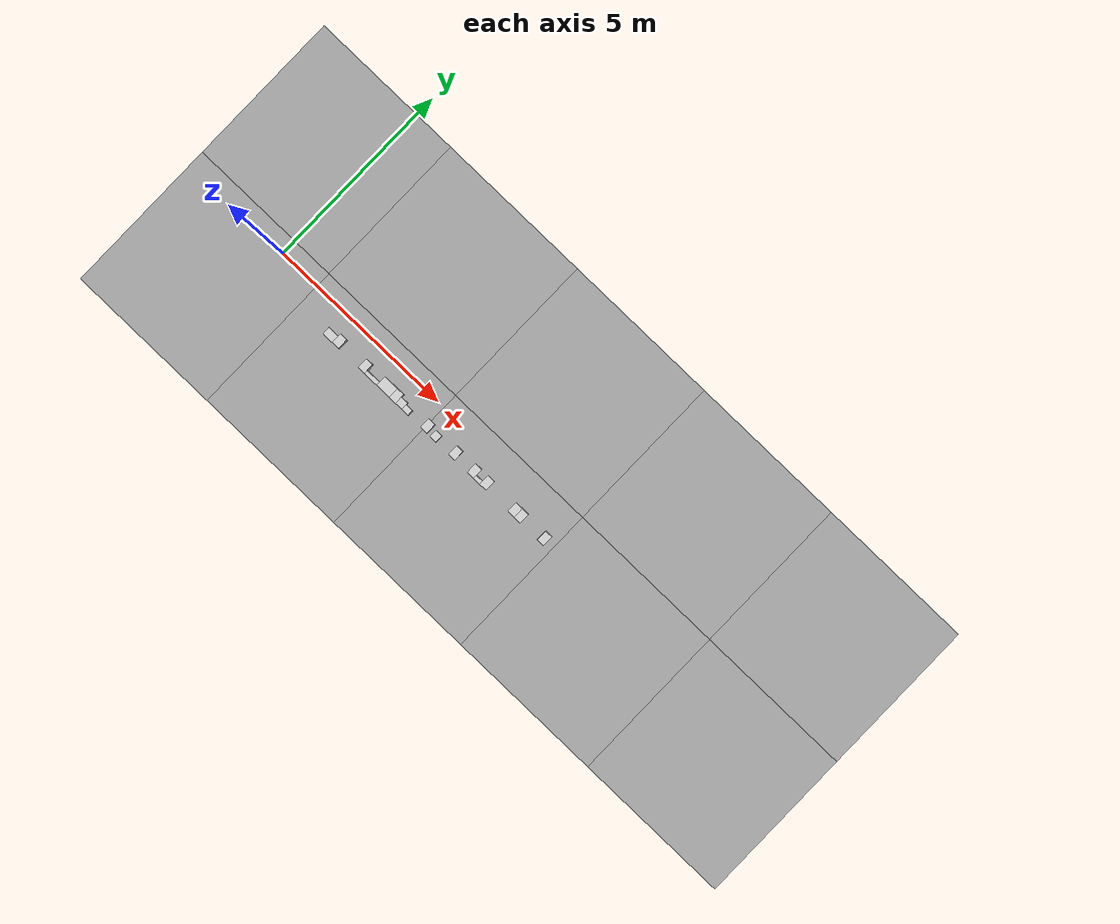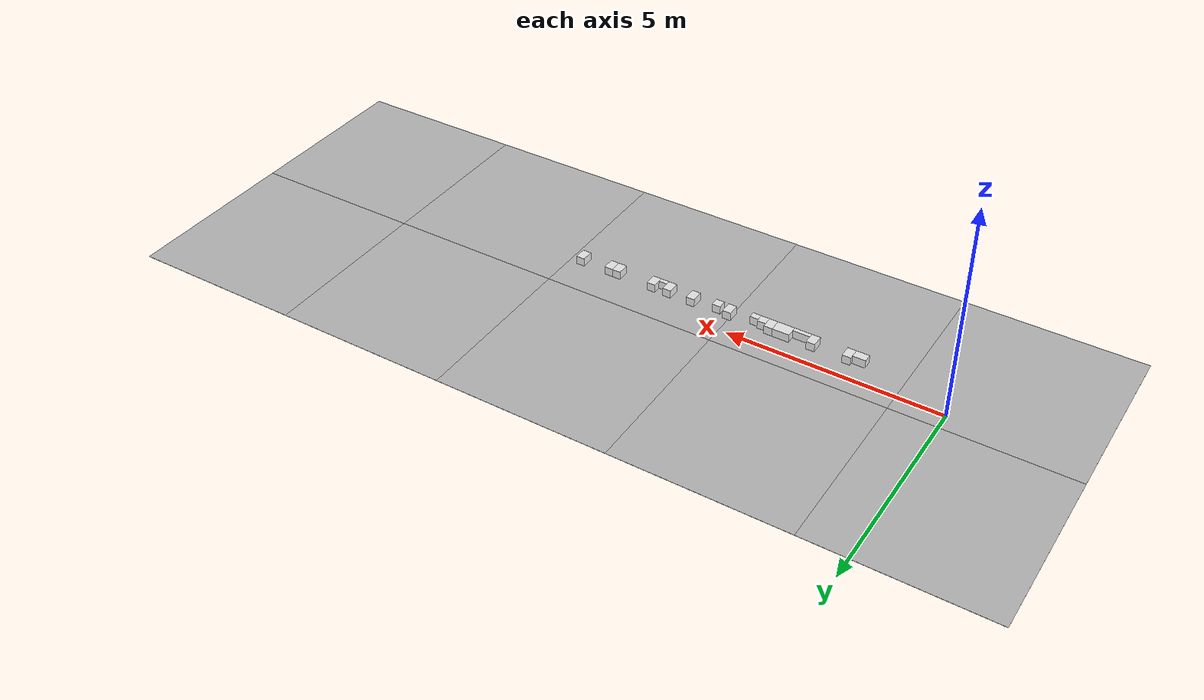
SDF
<sdf version='1.6'><world name='default'>
    <light name='sun_light' type='directional'>
      <pose frame=''>0 0 10 0 -0 0</pose>
      <diffuse>0.5 0.5 0.5 1</diffuse>
      <specular>0.1 0.1 0.1 1</specular>
      <direction>0.1 0.1 -0.9</direction>
      <attenuation>
        <range>20</range>
        <constant>0.5</constant>
        <linear>0.01</linear>
        <quadratic>0.001</quadratic>
      </attenuation>
      <cast_shadows>1</cast_shadows>
    </light>

    <model name='Tile/0-0'>
      <static>1</static>
      <link name='link'>
        <collision name='collision'>
          <geometry>
            <plane>
              <normal>0 0 1</normal>
              <size>4.096 4.096</size>
            </plane>
          </geometry>
          <surface>
            <friction>
              <ode>
                <mu>100</mu>
                <mu2>50</mu2>
              </ode>
              <torsional>
                <ode/>
              </torsional>
            </friction>
            <contact>
              <ode/>
            </contact>
            <bounce/>
          </surface>
          <max_contacts>10</max_contacts>
        </collision>
        <visual name='visual'>
          <cast_shadows>0</cast_shadows>
          <geometry>
            <plane>
              <normal>0 0 1</normal>
              <size>4.096 4.096</size>
            </plane>
          </geometry>
          <material>
            <script>
              <uri>file://materials/scripts</uri>
              <uri>file://materials/textures</uri>
              <name>Tile/aa44efc093d15b0d016b671cb8dad8b9b5925cd42bc6b331ef31decf4ba6863e</name>
            </script>
          </material>
        </visual>
        <self_collide>0</self_collide>
        <enable_wind>0</enable_wind>
        <kinematic>0</kinematic>
      </link>
      <pose frame=''>-0.952 -1.6520000000000001 0 0 -0 0</pose>
    </model>

    <model name='Tile/0-1'>
      <static>1</static>
      <link name='link'>
        <collision name='collision'>
          <geometry>
            <plane>
              <normal>0 0 1</normal>
              <size>4.096 4.096</size>
            </plane>
          </geometry>
          <surface>
            <friction>
              <ode>
                <mu>100</mu>
                <mu2>50</mu2>
              </ode>
              <torsional>
                <ode/>
              </torsional>
            </friction>
            <contact>
              <ode/>
            </contact>
            <bounce/>
          </surface>
          <max_contacts>10</max_contacts>
        </collision>
        <visual name='visual'>
          <cast_shadows>0</cast_shadows>
          <geometry>
            <plane>
              <normal>0 0 1</normal>
              <size>4.096 4.096</size>
            </plane>
          </geometry>
          <material>
            <script>
              <uri>file://materials/scripts</uri>
              <uri>file://materials/textures</uri>
              <name>Tile/6681b896b1587d54cb69aadeb5fb7247b4d6d500490292053e67105ac88ca889</name>
            </script>
          </material>
        </visual>
        <self_collide>0</self_collide>
        <enable_wind>0</enable_wind>
        <kinematic>0</kinematic>
      </link>
      <pose frame=''>-0.952 2.444 0 0 -0 0</pose>
    </model>

    <model name='Tile/1-0'>
      <static>1</static>
      <link name='link'>
        <collision name='collision'>
          <geometry>
            <plane>
              <normal>0 0 1</normal>
              <size>4.096 4.096</size>
            </plane>
          </geometry>
          <surface>
            <friction>
              <ode>
                <mu>100</mu>
                <mu2>50</mu2>
              </ode>
              <torsional>
                <ode/>
              </torsional>
            </friction>
            <contact>
              <ode/>
            </contact>
            <bounce/>
          </surface>
          <max_contacts>10</max_contacts>
        </collision>
        <visual name='visual'>
          <cast_shadows>0</cast_shadows>
          <geometry>
            <plane>
              <normal>0 0 1</normal>
              <size>4.096 4.096</size>
            </plane>
          </geometry>
          <material>
            <script>
              <uri>file://materials/scripts</uri>
              <uri>file://materials/textures</uri>
              <name>Tile/abd4ad698a8b881863bdc555807cc4f8b849a805cbff2503314ab73fce9062d6</name>
            </script>
          </material>
        </visual>
        <self_collide>0</self_collide>
        <enable_wind>0</enable_wind>
        <kinematic>0</kinematic>
      </link>
      <pose frame=''>3.144 -1.6520000000000001 0 0 -0 0</pose>
    </model>

    <model name='Tile/1-1'>
      <static>1</static>
      <link name='link'>
        <collision name='collision'>
          <geometry>
            <plane>
              <normal>0 0 1</normal>
              <size>4.096 4.096</size>
            </plane>
          </geometry>
          <surface>
            <friction>
              <ode>
                <mu>100</mu>
                <mu2>50</mu2>
              </ode>
              <torsional>
                <ode/>
              </torsional>
            </friction>
            <contact>
              <ode/>
            </contact>
            <bounce/>
          </surface>
          <max_contacts>10</max_contacts>
        </collision>
        <visual name='visual'>
          <cast_shadows>0</cast_shadows>
          <geometry>
            <plane>
              <normal>0 0 1</normal>
              <size>4.096 4.096</size>
            </plane>
          </geometry>
          <material>
            <script>
              <uri>file://materials/scripts</uri>
              <uri>file://materials/textures</uri>
              <name>Tile/13957a6de1f2afce18d7f1f64dacc2f21295e26ccf498256b0e1a51002cd5706</name>
            </script>
          </material>
        </visual>
        <self_collide>0</self_collide>
        <enable_wind>0</enable_wind>
        <kinematic>0</kinematic>
      </link>
      <pose frame=''>3.144 2.444 0 0 -0 0</pose>
    </model>

    <model name='Tile/2-0'>
      <static>1</static>
      <link name='link'>
        <collision name='collision'>
          <geometry>
            <plane>
              <normal>0 0 1</normal>
              <size>4.096 4.096</size>
            </plane>
          </geometry>
          <surface>
            <friction>
              <ode>
                <mu>100</mu>
                <mu2>50</mu2>
              </ode>
              <torsional>
                <ode/>
              </torsional>
            </friction>
            <contact>
              <ode/>
            </contact>
            <bounce/>
          </surface>
          <max_contacts>10</max_contacts>
        </collision>
        <visual name='visual'>
          <cast_shadows>0</cast_shadows>
          <geometry>
            <plane>
              <normal>0 0 1</normal>
              <size>4.096 4.096</size>
            </plane>
          </geometry>
          <material>
            <script>
              <uri>file://materials/scripts</uri>
              <uri>file://materials/textures</uri>
              <name>Tile/5f8e4126c09621b923843f98fefa42a9ec6d5877a129a0d44e316f780e3caf2d</name>
            </script>
          </material>
        </visual>
        <self_collide>0</self_collide>
        <enable_wind>0</enable_wind>
        <kinematic>0</kinematic>
      </link>
      <pose frame=''>7.24 -1.6520000000000001 0 0 -0 0</pose>
    </model>

    <model name='Tile/2-1'>
      <static>1</static>
      <link name='link'>
        <collision name='collision'>
          <geometry>
            <plane>
              <normal>0 0 1</normal>
              <size>4.096 4.096</size>
            </plane>
          </geometry>
          <surface>
            <friction>
              <ode>
                <mu>100</mu>
                <mu2>50</mu2>
              </ode>
              <torsional>
                <ode/>
              </torsional>
            </friction>
            <contact>
              <ode/>
            </contact>
            <bounce/>
          </surface>
          <max_contacts>10</max_contacts>
        </collision>
        <visual name='visual'>
          <cast_shadows>0</cast_shadows>
          <geometry>
            <plane>
              <normal>0 0 1</normal>
              <size>4.096 4.096</size>
            </plane>
          </geometry>
          <material>
            <script>
              <uri>file://materials/scripts</uri>
              <uri>file://materials/textures</uri>
              <name>Tile/13957a6de1f2afce18d7f1f64dacc2f21295e26ccf498256b0e1a51002cd5706</name>
            </script>
          </material>
        </visual>
        <self_collide>0</self_collide>
        <enable_wind>0</enable_wind>
        <kinematic>0</kinematic>
      </link>
      <pose frame=''>7.24 2.444 0 0 -0 0</pose>
    </model>

    <model name='Tile/3-0'>
      <static>1</static>
      <link name='link'>
        <collision name='collision'>
          <geometry>
            <plane>
              <normal>0 0 1</normal>
              <size>4.096 4.096</size>
            </plane>
          </geometry>
          <surface>
            <friction>
              <ode>
                <mu>100</mu>
                <mu2>50</mu2>
              </ode>
              <torsional>
                <ode/>
              </torsional>
            </friction>
            <contact>
              <ode/>
            </contact>
            <bounce/>
          </surface>
          <max_contacts>10</max_contacts>
        </collision>
        <visual name='visual'>
          <cast_shadows>0</cast_shadows>
          <geometry>
            <plane>
              <normal>0 0 1</normal>
              <size>4.096 4.096</size>
            </plane>
          </geometry>
          <material>
            <script>
              <uri>file://materials/scripts</uri>
              <uri>file://materials/textures</uri>
              <name>Tile/8c43dd61e011c04d62122c3fe2d9f962062ced94529fec5a1d528a1757297404</name>
            </script>
          </material>
        </visual>
        <self_collide>0</self_collide>
        <enable_wind>0</enable_wind>
        <kinematic>0</kinematic>
      </link>
      <pose frame=''>11.336 -1.6520000000000001 0 0 -0 0</pose>
    </model>

    <model name='Tile/3-1'>
      <static>1</static>
      <link name='link'>
        <collision name='collision'>
          <geometry>
            <plane>
              <normal>0 0 1</normal>
              <size>4.096 4.096</size>
            </plane>
          </geometry>
          <surface>
            <friction>
              <ode>
                <mu>100</mu>
                <mu2>50</mu2>
              </ode>
              <torsional>
                <ode/>
              </torsional>
            </friction>
            <contact>
              <ode/>
            </contact>
            <bounce/>
          </surface>
          <max_contacts>10</max_contacts>
        </collision>
        <visual name='visual'>
          <cast_shadows>0</cast_shadows>
          <geometry>
            <plane>
              <normal>0 0 1</normal>
              <size>4.096 4.096</size>
            </plane>
          </geometry>
          <material>
            <script>
              <uri>file://materials/scripts</uri>
              <uri>file://materials/textures</uri>
              <name>Tile/9496d352aa0424028fc7a807c66331b91d45b46ac6a5bfb50c8415420aa20ffd</name>
            </script>
          </material>
        </visual>
        <self_collide>0</self_collide>
        <enable_wind>0</enable_wind>
        <kinematic>0</kinematic>
      </link>
      <pose frame=''>11.336 2.444 0 0 -0 0</pose>
    </model>

    <model name='Tile/4-0'>
      <static>1</static>
      <link name='link'>
        <collision name='collision'>
          <geometry>
            <plane>
              <normal>0 0 1</normal>
              <size>4.096 4.096</size>
            </plane>
          </geometry>
          <surface>
            <friction>
              <ode>
                <mu>100</mu>
                <mu2>50</mu2>
              </ode>
              <torsional>
                <ode/>
              </torsional>
            </friction>
            <contact>
              <ode/>
            </contact>
            <bounce/>
          </surface>
          <max_contacts>10</max_contacts>
        </collision>
        <visual name='visual'>
          <cast_shadows>0</cast_shadows>
          <geometry>
            <plane>
              <normal>0 0 1</normal>
              <size>4.096 4.096</size>
            </plane>
          </geometry>
          <material>
            <script>
              <uri>file://materials/scripts</uri>
              <uri>file://materials/textures</uri>
              <name>Tile/5eab350b8220ac9944dbdfa4ac3288c7c17e24c3bf5df0dfcf6173d64dae00a1</name>
            </script>
          </material>
        </visual>
        <self_collide>0</self_collide>
        <enable_wind>0</enable_wind>
        <kinematic>0</kinematic>
      </link>
      <pose frame=''>15.431999999999999 -1.6520000000000001 0 0 -0 0</pose>
    </model>

    <model name='Tile/4-1'>
      <static>1</static>
      <link name='link'>
        <collision name='collision'>
          <geometry>
            <plane>
              <normal>0 0 1</normal>
              <size>4.096 4.096</size>
            </plane>
          </geometry>
          <surface>
            <friction>
              <ode>
                <mu>100</mu>
                <mu2>50</mu2>
              </ode>
              <torsional>
                <ode/>
              </torsional>
            </friction>
            <contact>
              <ode/>
            </contact>
            <bounce/>
          </surface>
          <max_contacts>10</max_contacts>
        </collision>
        <visual name='visual'>
          <cast_shadows>0</cast_shadows>
          <geometry>
            <plane>
              <normal>0 0 1</normal>
              <size>4.096 4.096</size>
            </plane>
          </geometry>
          <material>
            <script>
              <uri>file://materials/scripts</uri>
              <uri>file://materials/textures</uri>
              <name>Tile/5eab350b8220ac9944dbdfa4ac3288c7c17e24c3bf5df0dfcf6173d64dae00a1</name>
            </script>
          </material>
        </visual>
        <self_collide>0</self_collide>
        <enable_wind>0</enable_wind>
        <kinematic>0</kinematic>
      </link>
      <pose frame=''>15.431999999999999 2.444 0 0 -0 0</pose>
    </model>

    <model name='Obstacle/-5/0'>
      <pose frame=''>2.15 -0.6 0.1 0 0 -0.0</pose>
      <link name='link'>
        <inertial>
          <mass>10</mass>
          <inertia>
            <ixx>0.166667</ixx>
            <ixy>0</ixy>
            <ixz>0</ixz>
            <iyy>0.166667</iyy>
            <iyz>0</iyz>
            <izz>0.166667</izz>
          </inertia>
        </inertial>
        <collision name='collision'>
          <geometry>
            <box>
              <size>0.3 0.2 0.2</size>
            </box>
          </geometry>
          <max_contacts>10</max_contacts>
          <surface>
            <contact>
              <ode/>
            </contact>
            <bounce/>
            <friction>
              <torsional>
                <ode/>
              </torsional>
              <ode/>
            </friction>
          </surface>
        </collision>
        <visual name='visual'>
          <geometry>
            <box>
              <size>0.3 0.2 0.2</size>
            </box>
          </geometry>
          <material>
            <script>
              <name>Gazebo/White</name>
              <uri>file://media/materials/scripts/gazebo.material</uri>
            </script>
          </material>
        </visual>
        <self_collide>0</self_collide>
        <enable_wind>0</enable_wind>
        <kinematic>0</kinematic>
      </link>
    </model>

    <model name='Obstacle/-9/0'>
      <pose frame=''>2.4 -0.5599999999999999 0.1 0 0 -0.0</pose>
      <link name='link'>
        <inertial>
          <mass>10</mass>
          <inertia>
            <ixx>0.166667</ixx>
            <ixy>0</ixy>
            <ixz>0</ixz>
            <iyy>0.166667</iyy>
            <iyz>0</iyz>
            <izz>0.166667</izz>
          </inertia>
        </inertial>
        <collision name='collision'>
          <geometry>
            <box>
              <size>0.2 0.28 0.2</size>
            </box>
          </geometry>
          <max_contacts>10</max_contacts>
          <surface>
            <contact>
              <ode/>
            </contact>
            <bounce/>
            <friction>
              <torsional>
                <ode/>
              </torsional>
              <ode/>
            </friction>
          </surface>
        </collision>
        <visual name='visual'>
          <geometry>
            <box>
              <size>0.2 0.28 0.2</size>
            </box>
          </geometry>
          <material>
            <script>
              <name>Gazebo/White</name>
              <uri>file://media/materials/scripts/gazebo.material</uri>
            </script>
          </material>
        </visual>
        <self_collide>0</self_collide>
        <enable_wind>0</enable_wind>
        <kinematic>0</kinematic>
      </link>
    </model>

    <model name='Obstacle/-16/0'>
      <pose frame=''>3.23 -0.5599999999999999 0.1 0 0 -0.0</pose>
      <link name='link'>
        <inertial>
          <mass>10</mass>
          <inertia>
            <ixx>0.166667</ixx>
            <ixy>0</ixy>
            <ixz>0</ixz>
            <iyy>0.166667</iyy>
            <iyz>0</iyz>
            <izz>0.166667</izz>
          </inertia>
        </inertial>
        <collision name='collision'>
          <geometry>
            <box>
              <size>0.2 0.28 0.2</size>
            </box>
          </geometry>
          <max_contacts>10</max_contacts>
          <surface>
            <contact>
              <ode/>
            </contact>
            <bounce/>
            <friction>
              <torsional>
                <ode/>
              </torsional>
              <ode/>
            </friction>
          </surface>
        </collision>
        <visual name='visual'>
          <geometry>
            <box>
              <size>0.2 0.28 0.2</size>
            </box>
          </geometry>
          <material>
            <script>
              <name>Gazebo/White</name>
              <uri>file://media/materials/scripts/gazebo.material</uri>
            </script>
          </material>
        </visual>
        <self_collide>0</self_collide>
        <enable_wind>0</enable_wind>
        <kinematic>0</kinematic>
      </link>
    </model>

    <model name='Obstacle/-20/0'>
      <pose frame=''>3.5300000000000002 -0.6499999999999999 0.1 0 0 -0.0</pose>
      <link name='link'>
        <inertial>
          <mass>10</mass>
          <inertia>
            <ixx>0.166667</ixx>
            <ixy>0</ixy>
            <ixz>0</ixz>
            <iyy>0.166667</iyy>
            <iyz>0</iyz>
            <izz>0.166667</izz>
          </inertia>
        </inertial>
        <collision name='collision'>
          <geometry>
            <box>
              <size>0.4 0.1 0.2</size>
            </box>
          </geometry>
          <max_contacts>10</max_contacts>
          <surface>
            <contact>
              <ode/>
            </contact>
            <bounce/>
            <friction>
              <torsional>
                <ode/>
              </torsional>
              <ode/>
            </friction>
          </surface>
        </collision>
        <visual name='visual'>
          <geometry>
            <box>
              <size>0.4 0.1 0.2</size>
            </box>
          </geometry>
          <material>
            <script>
              <name>Gazebo/White</name>
              <uri>file://media/materials/scripts/gazebo.material</uri>
            </script>
          </material>
        </visual>
        <self_collide>0</self_collide>
        <enable_wind>0</enable_wind>
        <kinematic>0</kinematic>
      </link>
    </model>

    <model name='Obstacle/-24/0'>
      <pose frame=''>3.93 -0.5599999999999999 0.1 0 0 -0.0</pose>
      <link name='link'>
        <inertial>
          <mass>10</mass>
          <inertia>
            <ixx>0.166667</ixx>
            <ixy>0</ixy>
            <ixz>0</ixz>
            <iyy>0.166667</iyy>
            <iyz>0</iyz>
            <izz>0.166667</izz>
          </inertia>
        </inertial>
        <collision name='collision'>
          <geometry>
            <box>
              <size>0.4 0.28 0.2</size>
            </box>
          </geometry>
          <max_contacts>10</max_contacts>
          <surface>
            <contact>
              <ode/>
            </contact>
            <bounce/>
            <friction>
              <torsional>
                <ode/>
              </torsional>
              <ode/>
            </friction>
          </surface>
        </collision>
        <visual name='visual'>
          <geometry>
            <box>
              <size>0.4 0.28 0.2</size>
            </box>
          </geometry>
          <material>
            <script>
              <name>Gazebo/White</name>
              <uri>file://media/materials/scripts/gazebo.material</uri>
            </script>
          </material>
        </visual>
        <self_collide>0</self_collide>
        <enable_wind>0</enable_wind>
        <kinematic>0</kinematic>
      </link>
    </model>

    <model name='Obstacle/-28/0'>
      <pose frame=''>4.2299999999999995 -0.5599999999999999 0.1 0 0 -0.0</pose>
      <link name='link'>
        <inertial>
          <mass>10</mass>
          <inertia>
            <ixx>0.166667</ixx>
            <ixy>0</ixy>
            <ixz>0</ixz>
            <iyy>0.166667</iyy>
            <iyz>0</iyz>
            <izz>0.166667</izz>
          </inertia>
        </inertial>
        <collision name='collision'>
          <geometry>
            <box>
              <size>0.2 0.28 0.2</size>
            </box>
          </geometry>
          <max_contacts>10</max_contacts>
          <surface>
            <contact>
              <ode/>
            </contact>
            <bounce/>
            <friction>
              <torsional>
                <ode/>
              </torsional>
              <ode/>
            </friction>
          </surface>
        </collision>
        <visual name='visual'>
          <geometry>
            <box>
              <size>0.2 0.28 0.2</size>
            </box>
          </geometry>
          <material>
            <script>
              <name>Gazebo/White</name>
              <uri>file://media/materials/scripts/gazebo.material</uri>
            </script>
          </material>
        </visual>
        <self_collide>0</self_collide>
        <enable_wind>0</enable_wind>
        <kinematic>0</kinematic>
      </link>
    </model>

    <model name='Obstacle/-32/0'>
      <pose frame=''>4.43 -0.6 0.1 0 0 -0.0</pose>
      <link name='link'>
        <inertial>
          <mass>10</mass>
          <inertia>
            <ixx>0.166667</ixx>
            <ixy>0</ixy>
            <ixz>0</ixz>
            <iyy>0.166667</iyy>
            <iyz>0</iyz>
            <izz>0.166667</izz>
          </inertia>
        </inertial>
        <collision name='collision'>
          <geometry>
            <box>
              <size>0.2 0.2 0.2</size>
            </box>
          </geometry>
          <max_contacts>10</max_contacts>
          <surface>
            <contact>
              <ode/>
            </contact>
            <bounce/>
            <friction>
              <torsional>
                <ode/>
              </torsional>
              <ode/>
            </friction>
          </surface>
        </collision>
        <visual name='visual'>
          <geometry>
            <box>
              <size>0.2 0.2 0.2</size>
            </box>
          </geometry>
          <material>
            <script>
              <name>Gazebo/White</name>
              <uri>file://media/materials/scripts/gazebo.material</uri>
            </script>
          </material>
        </visual>
        <self_collide>0</self_collide>
        <enable_wind>0</enable_wind>
        <kinematic>0</kinematic>
      </link>
    </model>

    <model name='Obstacle/-36/0'>
      <pose frame=''>4.63 -0.625 0.1 0 0 -0.0</pose>
      <link name='link'>
        <inertial>
          <mass>10</mass>
          <inertia>
            <ixx>0.166667</ixx>
            <ixy>0</ixy>
            <ixz>0</ixz>
            <iyy>0.166667</iyy>
            <iyz>0</iyz>
            <izz>0.166667</izz>
          </inertia>
        </inertial>
        <collision name='collision'>
          <geometry>
            <box>
              <size>0.2 0.15 0.2</size>
            </box>
          </geometry>
          <max_contacts>10</max_contacts>
          <surface>
            <contact>
              <ode/>
            </contact>
            <bounce/>
            <friction>
              <torsional>
                <ode/>
              </torsional>
              <ode/>
            </friction>
          </surface>
        </collision>
        <visual name='visual'>
          <geometry>
            <box>
              <size>0.2 0.15 0.2</size>
            </box>
          </geometry>
          <material>
            <script>
              <name>Gazebo/White</name>
              <uri>file://media/materials/scripts/gazebo.material</uri>
            </script>
          </material>
        </visual>
        <self_collide>0</self_collide>
        <enable_wind>0</enable_wind>
        <kinematic>0</kinematic>
      </link>
    </model>

    <model name='Obstacle/-43/0'>
      <pose frame=''>5.23 -0.5599999999999999 0.1 0 0 -0.0</pose>
      <link name='link'>
        <inertial>
          <mass>10</mass>
          <inertia>
            <ixx>0.166667</ixx>
            <ixy>0</ixy>
            <ixz>0</ixz>
            <iyy>0.166667</iyy>
            <iyz>0</iyz>
            <izz>0.166667</izz>
          </inertia>
        </inertial>
        <collision name='collision'>
          <geometry>
            <box>
              <size>0.2 0.28 0.2</size>
            </box>
          </geometry>
          <max_contacts>10</max_contacts>
          <surface>
            <contact>
              <ode/>
            </contact>
            <bounce/>
            <friction>
              <torsional>
                <ode/>
              </torsional>
              <ode/>
            </friction>
          </surface>
        </collision>
        <visual name='visual'>
          <geometry>
            <box>
              <size>0.2 0.28 0.2</size>
            </box>
          </geometry>
          <material>
            <script>
              <name>Gazebo/White</name>
              <uri>file://media/materials/scripts/gazebo.material</uri>
            </script>
          </material>
        </visual>
        <self_collide>0</self_collide>
        <enable_wind>0</enable_wind>
        <kinematic>0</kinematic>
      </link>
    </model>

    <model name='Obstacle/-50/0'>
      <pose frame=''>5.53 -0.6 0.1 0 0 -0.0</pose>
      <link name='link'>
        <inertial>
          <mass>10</mass>
          <inertia>
            <ixx>0.166667</ixx>
            <ixy>0</ixy>
            <ixz>0</ixz>
            <iyy>0.166667</iyy>
            <iyz>0</iyz>
            <izz>0.166667</izz>
          </inertia>
        </inertial>
        <collision name='collision'>
          <geometry>
            <box>
              <size>0.2 0.2 0.2</size>
            </box>
          </geometry>
          <max_contacts>10</max_contacts>
          <surface>
            <contact>
              <ode/>
            </contact>
            <bounce/>
            <friction>
              <torsional>
                <ode/>
              </torsional>
              <ode/>
            </friction>
          </surface>
        </collision>
        <visual name='visual'>
          <geometry>
            <box>
              <size>0.2 0.2 0.2</size>
            </box>
          </geometry>
          <material>
            <script>
              <name>Gazebo/White</name>
              <uri>file://media/materials/scripts/gazebo.material</uri>
            </script>
          </material>
        </visual>
        <self_collide>0</self_collide>
        <enable_wind>0</enable_wind>
        <kinematic>0</kinematic>
      </link>
    </model>

    <model name='Obstacle/-57/0'>
      <pose frame=''>6.130000000000001 -0.5599999999999999 0.1 0 0 -0.0</pose>
      <link name='link'>
        <inertial>
          <mass>10</mass>
          <inertia>
            <ixx>0.166667</ixx>
            <ixy>0</ixy>
            <ixz>0</ixz>
            <iyy>0.166667</iyy>
            <iyz>0</iyz>
            <izz>0.166667</izz>
          </inertia>
        </inertial>
        <collision name='collision'>
          <geometry>
            <box>
              <size>0.2 0.28 0.2</size>
            </box>
          </geometry>
          <max_contacts>10</max_contacts>
          <surface>
            <contact>
              <ode/>
            </contact>
            <bounce/>
            <friction>
              <torsional>
                <ode/>
              </torsional>
              <ode/>
            </friction>
          </surface>
        </collision>
        <visual name='visual'>
          <geometry>
            <box>
              <size>0.2 0.28 0.2</size>
            </box>
          </geometry>
          <material>
            <script>
              <name>Gazebo/White</name>
              <uri>file://media/materials/scripts/gazebo.material</uri>
            </script>
          </material>
        </visual>
        <self_collide>0</self_collide>
        <enable_wind>0</enable_wind>
        <kinematic>0</kinematic>
      </link>
    </model>

    <model name='Obstacle/-64/0'>
      <pose frame=''>6.730000000000001 -0.5599999999999999 0.1 0 0 -0.0</pose>
      <link name='link'>
        <inertial>
          <mass>10</mass>
          <inertia>
            <ixx>0.166667</ixx>
            <ixy>0</ixy>
            <ixz>0</ixz>
            <iyy>0.166667</iyy>
            <iyz>0</iyz>
            <izz>0.166667</izz>
          </inertia>
        </inertial>
        <collision name='collision'>
          <geometry>
            <box>
              <size>0.2 0.28 0.2</size>
            </box>
          </geometry>
          <max_contacts>10</max_contacts>
          <surface>
            <contact>
              <ode/>
            </contact>
            <bounce/>
            <friction>
              <torsional>
                <ode/>
              </torsional>
              <ode/>
            </friction>
          </surface>
        </collision>
        <visual name='visual'>
          <geometry>
            <box>
              <size>0.2 0.28 0.2</size>
            </box>
          </geometry>
          <material>
            <script>
              <name>Gazebo/White</name>
              <uri>file://media/materials/scripts/gazebo.material</uri>
            </script>
          </material>
        </visual>
        <self_collide>0</self_collide>
        <enable_wind>0</enable_wind>
        <kinematic>0</kinematic>
      </link>
    </model>

    <model name='Obstacle/-68/0'>
      <pose frame=''>6.9300000000000015 -0.6499999999999999 0.1 0 0 -0.0</pose>
      <link name='link'>
        <inertial>
          <mass>10</mass>
          <inertia>
            <ixx>0.166667</ixx>
            <ixy>0</ixy>
            <ixz>0</ixz>
            <iyy>0.166667</iyy>
            <iyz>0</iyz>
            <izz>0.166667</izz>
          </inertia>
        </inertial>
        <collision name='collision'>
          <geometry>
            <box>
              <size>0.2 0.1 0.2</size>
            </box>
          </geometry>
          <max_contacts>10</max_contacts>
          <surface>
            <contact>
              <ode/>
            </contact>
            <bounce/>
            <friction>
              <torsional>
                <ode/>
              </torsional>
              <ode/>
            </friction>
          </surface>
        </collision>
        <visual name='visual'>
          <geometry>
            <box>
              <size>0.2 0.1 0.2</size>
            </box>
          </geometry>
          <material>
            <script>
              <name>Gazebo/White</name>
              <uri>file://media/materials/scripts/gazebo.material</uri>
            </script>
          </material>
        </visual>
        <self_collide>0</self_collide>
        <enable_wind>0</enable_wind>
        <kinematic>0</kinematic>
      </link>
    </model>

    <model name='Obstacle/-72/0'>
      <pose frame=''>7.130000000000002 -0.5599999999999999 0.1 0 0 -0.0</pose>
      <link name='link'>
        <inertial>
          <mass>10</mass>
          <inertia>
            <ixx>0.166667</ixx>
            <ixy>0</ixy>
            <ixz>0</ixz>
            <iyy>0.166667</iyy>
            <iyz>0</iyz>
            <izz>0.166667</izz>
          </inertia>
        </inertial>
        <collision name='collision'>
          <geometry>
            <box>
              <size>0.2 0.28 0.2</size>
            </box>
          </geometry>
          <max_contacts>10</max_contacts>
          <surface>
            <contact>
              <ode/>
            </contact>
            <bounce/>
            <friction>
              <torsional>
                <ode/>
              </torsional>
              <ode/>
            </friction>
          </surface>
        </collision>
        <visual name='visual'>
          <geometry>
            <box>
              <size>0.2 0.28 0.2</size>
            </box>
          </geometry>
          <material>
            <script>
              <name>Gazebo/White</name>
              <uri>file://media/materials/scripts/gazebo.material</uri>
            </script>
          </material>
        </visual>
        <self_collide>0</self_collide>
        <enable_wind>0</enable_wind>
        <kinematic>0</kinematic>
      </link>
    </model>

    <model name='Obstacle/-79/0'>
      <pose frame=''>8.030000000000003 -0.5599999999999999 0.1 0 0 -0.0</pose>
      <link name='link'>
        <inertial>
          <mass>10</mass>
          <inertia>
            <ixx>0.166667</ixx>
            <ixy>0</ixy>
            <ixz>0</ixz>
            <iyy>0.166667</iyy>
            <iyz>0</iyz>
            <izz>0.166667</izz>
          </inertia>
        </inertial>
        <collision name='collision'>
          <geometry>
            <box>
              <size>0.2 0.28 0.2</size>
            </box>
          </geometry>
          <max_contacts>10</max_contacts>
          <surface>
            <contact>
              <ode/>
            </contact>
            <bounce/>
            <friction>
              <torsional>
                <ode/>
              </torsional>
              <ode/>
            </friction>
          </surface>
        </collision>
        <visual name='visual'>
          <geometry>
            <box>
              <size>0.2 0.28 0.2</size>
            </box>
          </geometry>
          <material>
            <script>
              <name>Gazebo/White</name>
              <uri>file://media/materials/scripts/gazebo.material</uri>
            </script>
          </material>
        </visual>
        <self_collide>0</self_collide>
        <enable_wind>0</enable_wind>
        <kinematic>0</kinematic>
      </link>
    </model>

    <model name='Obstacle/-83/0'>
      <pose frame=''>8.230000000000002 -0.5599999999999999 0.1 0 0 -0.0</pose>
      <link name='link'>
        <inertial>
          <mass>10</mass>
          <inertia>
            <ixx>0.166667</ixx>
            <ixy>0</ixy>
            <ixz>0</ixz>
            <iyy>0.166667</iyy>
            <iyz>0</iyz>
            <izz>0.166667</izz>
          </inertia>
        </inertial>
        <collision name='collision'>
          <geometry>
            <box>
              <size>0.2 0.28 0.2</size>
            </box>
          </geometry>
          <max_contacts>10</max_contacts>
          <surface>
            <contact>
              <ode/>
            </contact>
            <bounce/>
            <friction>
              <torsional>
                <ode/>
              </torsional>
              <ode/>
            </friction>
          </surface>
        </collision>
        <visual name='visual'>
          <geometry>
            <box>
              <size>0.2 0.28 0.2</size>
            </box>
          </geometry>
          <material>
            <script>
              <name>Gazebo/White</name>
              <uri>file://media/materials/scripts/gazebo.material</uri>
            </script>
          </material>
        </visual>
        <self_collide>0</self_collide>
        <enable_wind>0</enable_wind>
        <kinematic>0</kinematic>
      </link>
    </model>

    <model name='Obstacle/-90/0'>
      <pose frame=''>8.980000000000002 -0.5599999999999999 0.1 0 0 -0.0</pose>
      <link name='link'>
        <inertial>
          <mass>10</mass>
          <inertia>
            <ixx>0.166667</ixx>
            <ixy>0</ixy>
            <ixz>0</ixz>
            <iyy>0.166667</iyy>
            <iyz>0</iyz>
            <izz>0.166667</izz>
          </inertia>
        </inertial>
        <collision name='collision'>
          <geometry>
            <box>
              <size>0.2 0.28 0.2</size>
            </box>
          </geometry>
          <max_contacts>10</max_contacts>
          <surface>
            <contact>
              <ode/>
            </contact>
            <bounce/>
            <friction>
              <torsional>
                <ode/>
              </torsional>
              <ode/>
            </friction>
          </surface>
        </collision>
        <visual name='visual'>
          <geometry>
            <box>
              <size>0.2 0.28 0.2</size>
            </box>
          </geometry>
          <material>
            <script>
              <name>Gazebo/White</name>
              <uri>file://media/materials/scripts/gazebo.material</uri>
            </script>
          </material>
        </visual>
        <self_collide>0</self_collide>
        <enable_wind>0</enable_wind>
        <kinematic>0</kinematic>
      </link>
    </model>
    </world></sdf>
